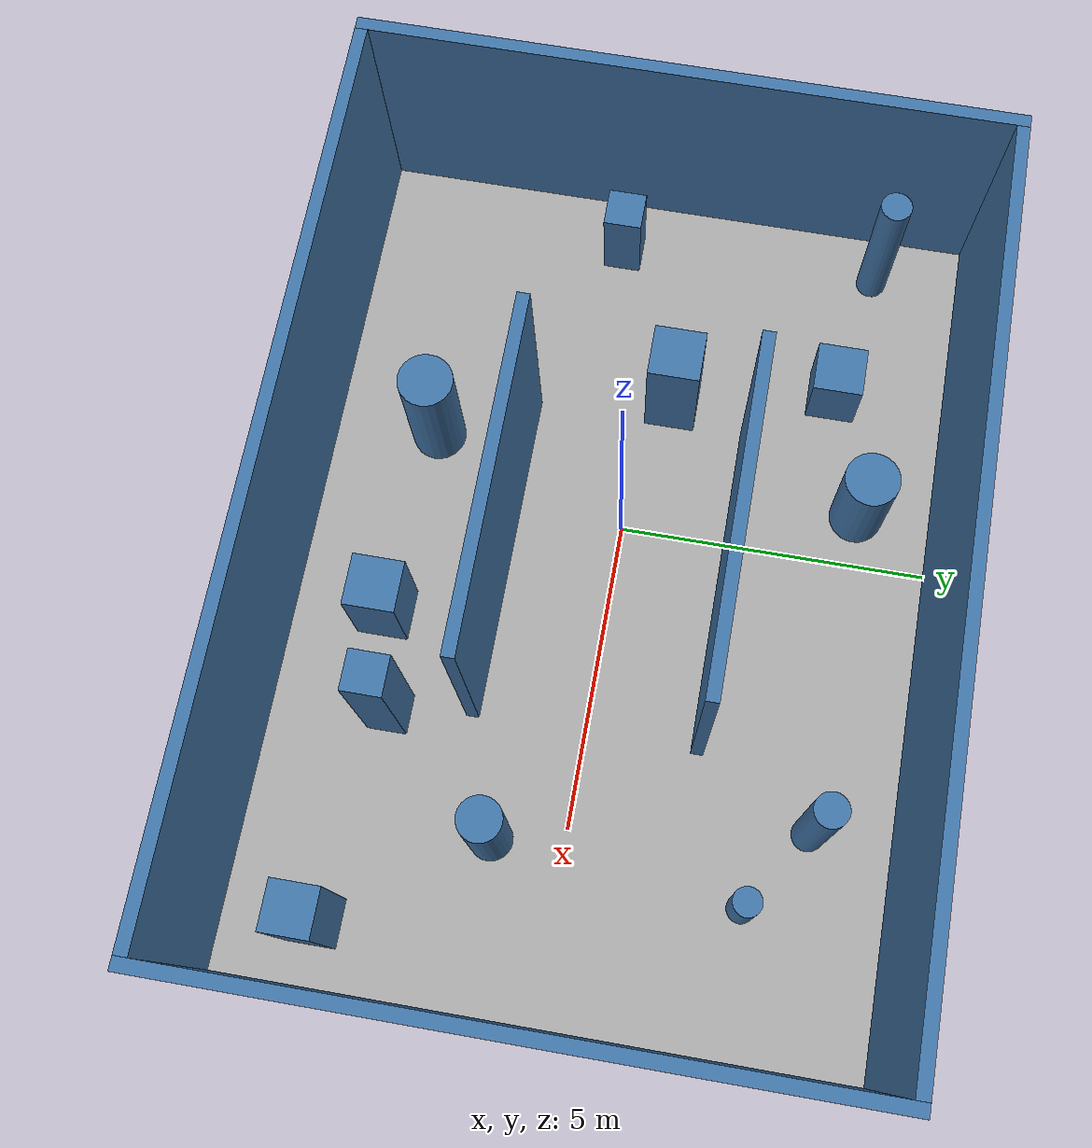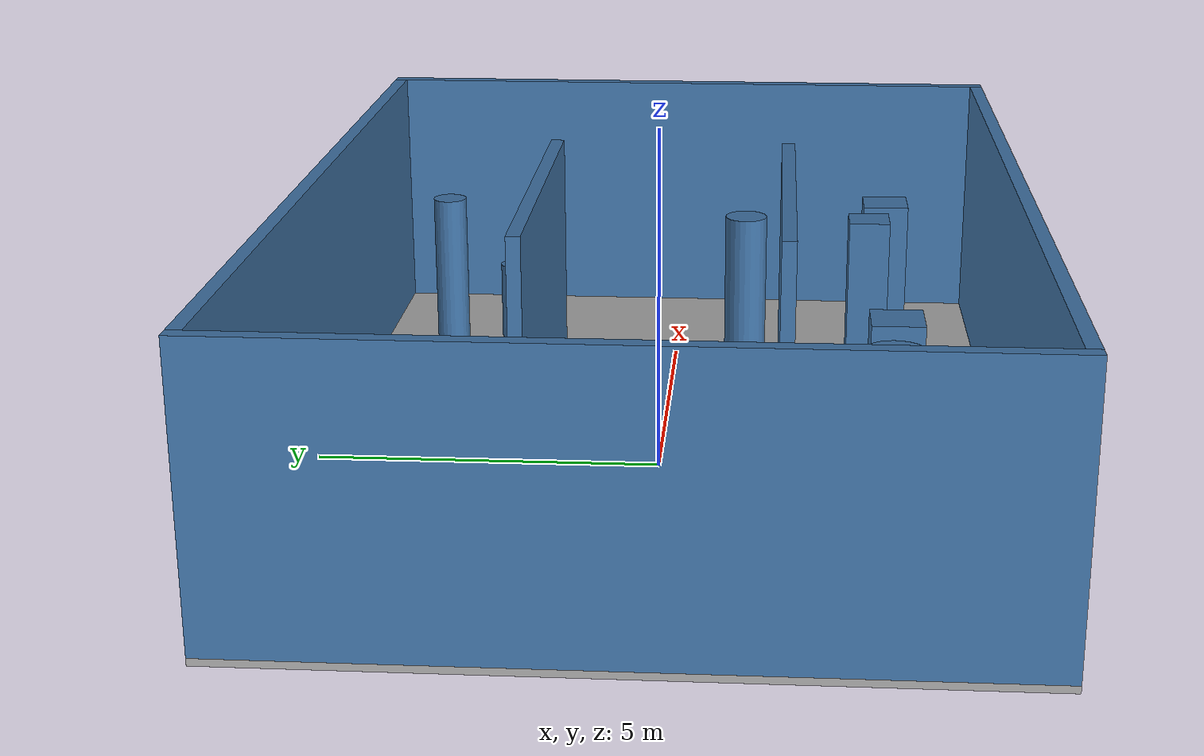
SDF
<?xml version="1.0" encoding="utf-8"?>
<sdf version="1.6">
  <world name="default">
    <gravity>0 0 -9.8</gravity>
    <magnetic_field>6e-06 2.3e-05 -4.2e-05</magnetic_field>
    <physics name="default_physics" type="ode">
      <max_step_size>.001</max_step_size>
      <real_time_factor>1</real_time_factor>
      <real_time_update_rate>1000</real_time_update_rate>
    </physics>
    <scene>
      <ambient>.5 .5 .5 1</ambient>
      <background>.7 .7 .7 1</background>
      <shadows>false</shadows>
    </scene>
    <light name="sun" type="directional">
      <pose>0 0 10 0 0 0</pose>
      <diffuse>.8 .8 .8 1</diffuse>
      <direction>-.2 .1 -1</direction>
    </light>
    <model name="arena_floor">
      <static>true</static>
      <pose>1.000000 0.000000 -0.050000 0.000000 0.000000 0.000000</pose>
      <link name="body">
        <collision name="collision">
          <geometry>
            <box>
              <size>14.400000 10.400000 0.100000</size>
            </box>
          </geometry>
        </collision>
        <visual name="visual">
          <geometry>
            <box>
              <size>14.400000 10.400000 0.100000</size>
            </box>
          </geometry>
          <material>
            <ambient>.65 .65 .65 1</ambient>
            <diffuse>.65 .65 .65 1</diffuse>
          </material>
        </visual>
      </link>
    </model>
    <model name="boundary_west">
      <static>true</static>
      <pose>-6.100000 0.000000 2.000000 0.000000 0.000000 0.000000</pose>
      <link name="body">
        <collision name="collision">
          <geometry>
            <box>
              <size>0.200000 10.400000 4.000000</size>
            </box>
          </geometry>
        </collision>
        <visual name="visual">
          <geometry>
            <box>
              <size>0.200000 10.400000 4.000000</size>
            </box>
          </geometry>
          <material>
            <ambient>.25 .45 .65 1</ambient>
            <diffuse>.25 .45 .65 1</diffuse>
          </material>
        </visual>
      </link>
    </model>
    <model name="boundary_east">
      <static>true</static>
      <pose>8.100000 0.000000 2.000000 0.000000 0.000000 0.000000</pose>
      <link name="body">
        <collision name="collision">
          <geometry>
            <box>
              <size>0.200000 10.400000 4.000000</size>
            </box>
          </geometry>
        </collision>
        <visual name="visual">
          <geometry>
            <box>
              <size>0.200000 10.400000 4.000000</size>
            </box>
          </geometry>
          <material>
            <ambient>.25 .45 .65 1</ambient>
            <diffuse>.25 .45 .65 1</diffuse>
          </material>
        </visual>
      </link>
    </model>
    <model name="boundary_south">
      <static>true</static>
      <pose>1.000000 -5.100000 2.000000 0.000000 0.000000 0.000000</pose>
      <link name="body">
        <collision name="collision">
          <geometry>
            <box>
              <size>14.000000 0.200000 4.000000</size>
            </box>
          </geometry>
        </collision>
        <visual name="visual">
          <geometry>
            <box>
              <size>14.000000 0.200000 4.000000</size>
            </box>
          </geometry>
          <material>
            <ambient>.25 .45 .65 1</ambient>
            <diffuse>.25 .45 .65 1</diffuse>
          </material>
        </visual>
      </link>
    </model>
    <model name="boundary_north">
      <static>true</static>
      <pose>1.000000 5.100000 2.000000 0.000000 0.000000 0.000000</pose>
      <link name="body">
        <collision name="collision">
          <geometry>
            <box>
              <size>14.000000 0.200000 4.000000</size>
            </box>
          </geometry>
        </collision>
        <visual name="visual">
          <geometry>
            <box>
              <size>14.000000 0.200000 4.000000</size>
            </box>
          </geometry>
          <material>
            <ambient>.25 .45 .65 1</ambient>
            <diffuse>.25 .45 .65 1</diffuse>
          </material>
        </visual>
      </link>
    </model>
    <model name="corridor_south">
      <static>true</static>
      <pose>0.750000 -1.800000 2.000000 0.000000 0.000000 0.000000</pose>
      <link name="body">
        <collision name="collision">
          <geometry>
            <box>
              <size>5.500000 0.200000 4.000000</size>
            </box>
          </geometry>
        </collision>
        <visual name="visual">
          <geometry>
            <box>
              <size>5.500000 0.200000 4.000000</size>
            </box>
          </geometry>
          <material>
            <ambient>.25 .45 .65 1</ambient>
            <diffuse>.25 .45 .65 1</diffuse>
          </material>
        </visual>
      </link>
    </model>
    <model name="corridor_north">
      <static>true</static>
      <pose>0.750000 1.800000 2.000000 0.000000 0.000000 0.000000</pose>
      <link name="body">
        <collision name="collision">
          <geometry>
            <box>
              <size>5.500000 0.200000 4.000000</size>
            </box>
          </geometry>
        </collision>
        <visual name="visual">
          <geometry>
            <box>
              <size>5.500000 0.200000 4.000000</size>
            </box>
          </geometry>
          <material>
            <ambient>.25 .45 .65 1</ambient>
            <diffuse>.25 .45 .65 1</diffuse>
          </material>
        </visual>
      </link>
    </model>
    <model name="obstacle_000">
      <static>true</static>
      <pose>-1.140000 -3.288000 1.119500 0.000000 0.000000 0.000000</pose>
      <link name="body">
        <collision name="collision">
          <geometry>
            <cylinder>
              <radius>0.439000</radius>
              <length>2.239000</length>
            </cylinder>
          </geometry>
        </collision>
        <visual name="visual">
          <geometry>
            <cylinder>
              <radius>0.439000</radius>
              <length>2.239000</length>
            </cylinder>
          </geometry>
          <material>
            <ambient>.25 .45 .65 1</ambient>
            <diffuse>.25 .45 .65 1</diffuse>
          </material>
        </visual>
      </link>
    </model>
    <model name="obstacle_001">
      <static>true</static>
      <pose>5.739000 2.829000 0.643500 0.000000 0.000000 0.000000</pose>
      <link name="body">
        <collision name="collision">
          <geometry>
            <cylinder>
              <radius>0.227500</radius>
              <length>1.287000</length>
            </cylinder>
          </geometry>
        </collision>
        <visual name="visual">
          <geometry>
            <cylinder>
              <radius>0.227500</radius>
              <length>1.287000</length>
            </cylinder>
          </geometry>
          <material>
            <ambient>.25 .45 .65 1</ambient>
            <diffuse>.25 .45 .65 1</diffuse>
          </material>
        </visual>
      </link>
    </model>
    <model name="obstacle_002">
      <static>true</static>
      <pose>2.033000 -3.499000 0.830500 0.000000 0.000000 0.000000</pose>
      <link name="body">
        <collision name="collision">
          <geometry>
            <box>
              <size>0.821000 0.821000 1.661000</size>
            </box>
          </geometry>
        </collision>
        <visual name="visual">
          <geometry>
            <box>
              <size>0.821000 0.821000 1.661000</size>
            </box>
          </geometry>
          <material>
            <ambient>.25 .45 .65 1</ambient>
            <diffuse>.25 .45 .65 1</diffuse>
          </material>
        </visual>
      </link>
    </model>
    <model name="obstacle_003">
      <static>true</static>
      <pose>-5.052000 -0.797000 0.740000 0.000000 0.000000 0.000000</pose>
      <link name="body">
        <collision name="collision">
          <geometry>
            <box>
              <size>0.622000 0.622000 1.480000</size>
            </box>
          </geometry>
        </collision>
        <visual name="visual">
          <geometry>
            <box>
              <size>0.622000 0.622000 1.480000</size>
            </box>
          </geometry>
          <material>
            <ambient>.25 .45 .65 1</ambient>
            <diffuse>.25 .45 .65 1</diffuse>
          </material>
        </visual>
      </link>
    </model>
    <model name="obstacle_004">
      <static>true</static>
      <pose>3.645000 -3.097000 1.384000 0.000000 0.000000 0.000000</pose>
      <link name="body">
        <collision name="collision">
          <geometry>
            <box>
              <size>0.629000 0.629000 2.768000</size>
            </box>
          </geometry>
        </collision>
        <visual name="visual">
          <geometry>
            <box>
              <size>0.629000 0.629000 2.768000</size>
            </box>
          </geometry>
          <material>
            <ambient>.25 .45 .65 1</ambient>
            <diffuse>.25 .45 .65 1</diffuse>
          </material>
        </visual>
      </link>
    </model>
    <model name="obstacle_005">
      <static>true</static>
      <pose>6.995000 -3.534000 1.073500 0.000000 0.000000 0.000000</pose>
      <link name="body">
        <collision name="collision">
          <geometry>
            <box>
              <size>0.758000 0.758000 2.147000</size>
            </box>
          </geometry>
        </collision>
        <visual name="visual">
          <geometry>
            <box>
              <size>0.758000 0.758000 2.147000</size>
            </box>
          </geometry>
          <material>
            <ambient>.25 .45 .65 1</ambient>
            <diffuse>.25 .45 .65 1</diffuse>
          </material>
        </visual>
      </link>
    </model>
    <model name="obstacle_006">
      <static>true</static>
      <pose>-5.172000 3.529000 1.300500 0.000000 0.000000 0.000000</pose>
      <link name="body">
        <collision name="collision">
          <geometry>
            <cylinder>
              <radius>0.249000</radius>
              <length>2.601000</length>
            </cylinder>
          </geometry>
        </collision>
        <visual name="visual">
          <geometry>
            <cylinder>
              <radius>0.249000</radius>
              <length>2.601000</length>
            </cylinder>
          </geometry>
          <material>
            <ambient>.25 .45 .65 1</ambient>
            <diffuse>.25 .45 .65 1</diffuse>
          </material>
        </visual>
      </link>
    </model>
    <model name="obstacle_007">
      <static>true</static>
      <pose>4.453000 3.694000 1.388000 0.000000 0.000000 0.000000</pose>
      <link name="body">
        <collision name="collision">
          <geometry>
            <cylinder>
              <radius>0.262000</radius>
              <length>2.776000</length>
            </cylinder>
          </geometry>
        </collision>
        <visual name="visual">
          <geometry>
            <cylinder>
              <radius>0.262000</radius>
              <length>2.776000</length>
            </cylinder>
          </geometry>
          <material>
            <ambient>.25 .45 .65 1</ambient>
            <diffuse>.25 .45 .65 1</diffuse>
          </material>
        </visual>
      </link>
    </model>
    <model name="obstacle_008">
      <static>true</static>
      <pose>-0.855000 3.790000 0.909500 0.000000 0.000000 0.000000</pose>
      <link name="body">
        <collision name="collision">
          <geometry>
            <cylinder>
              <radius>0.437000</radius>
              <length>1.819000</length>
            </cylinder>
          </geometry>
        </collision>
        <visual name="visual">
          <geometry>
            <cylinder>
              <radius>0.437000</radius>
              <length>1.819000</length>
            </cylinder>
          </geometry>
          <material>
            <ambient>.25 .45 .65 1</ambient>
            <diffuse>.25 .45 .65 1</diffuse>
          </material>
        </visual>
      </link>
    </model>
    <model name="obstacle_009">
      <static>true</static>
      <pose>-2.342000 0.484000 1.028500 0.000000 0.000000 0.000000</pose>
      <link name="body">
        <collision name="collision">
          <geometry>
            <box>
              <size>0.831000 0.831000 2.057000</size>
            </box>
          </geometry>
        </collision>
        <visual name="visual">
          <geometry>
            <box>
              <size>0.831000 0.831000 2.057000</size>
            </box>
          </geometry>
          <material>
            <ambient>.25 .45 .65 1</ambient>
            <diffuse>.25 .45 .65 1</diffuse>
          </material>
        </visual>
      </link>
    </model>
    <model name="obstacle_010">
      <static>true</static>
      <pose>5.344000 -1.141000 1.154000 0.000000 0.000000 0.000000</pose>
      <link name="body">
        <collision name="collision">
          <geometry>
            <cylinder>
              <radius>0.342500</radius>
              <length>2.308000</length>
            </cylinder>
          </geometry>
        </collision>
        <visual name="visual">
          <geometry>
            <cylinder>
              <radius>0.342500</radius>
              <length>2.308000</length>
            </cylinder>
          </geometry>
          <material>
            <ambient>.25 .45 .65 1</ambient>
            <diffuse>.25 .45 .65 1</diffuse>
          </material>
        </visual>
      </link>
    </model>
    <model name="obstacle_011">
      <static>true</static>
      <pose>-2.933000 3.128000 0.577000 0.000000 0.000000 0.000000</pose>
      <link name="body">
        <collision name="collision">
          <geometry>
            <box>
              <size>0.805000 0.805000 1.154000</size>
            </box>
          </geometry>
        </collision>
        <visual name="visual">
          <geometry>
            <box>
              <size>0.805000 0.805000 1.154000</size>
            </box>
          </geometry>
          <material>
            <ambient>.25 .45 .65 1</ambient>
            <diffuse>.25 .45 .65 1</diffuse>
          </material>
        </visual>
      </link>
    </model>
  </world>
</sdf>
